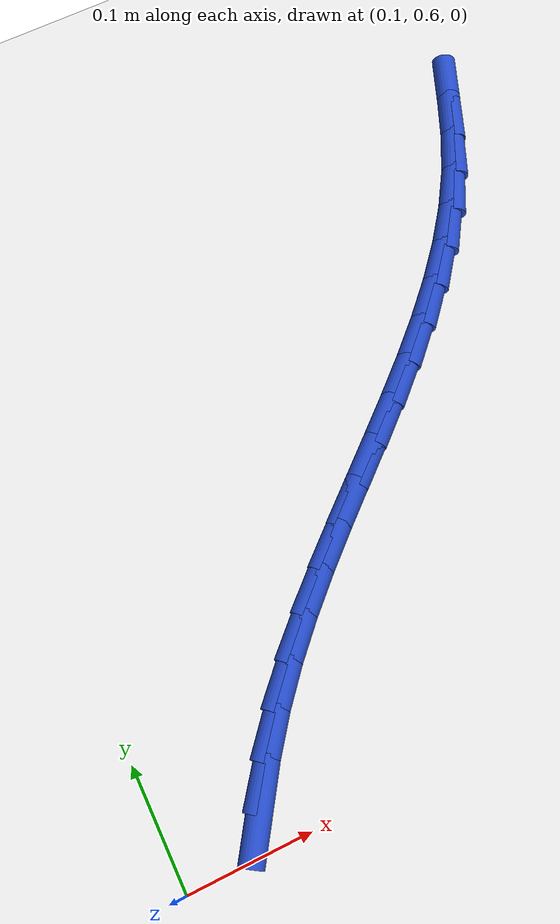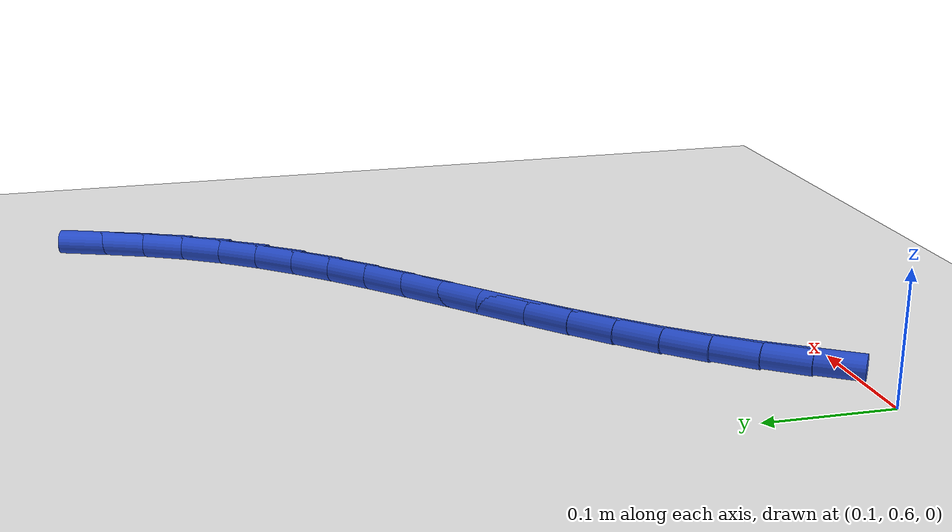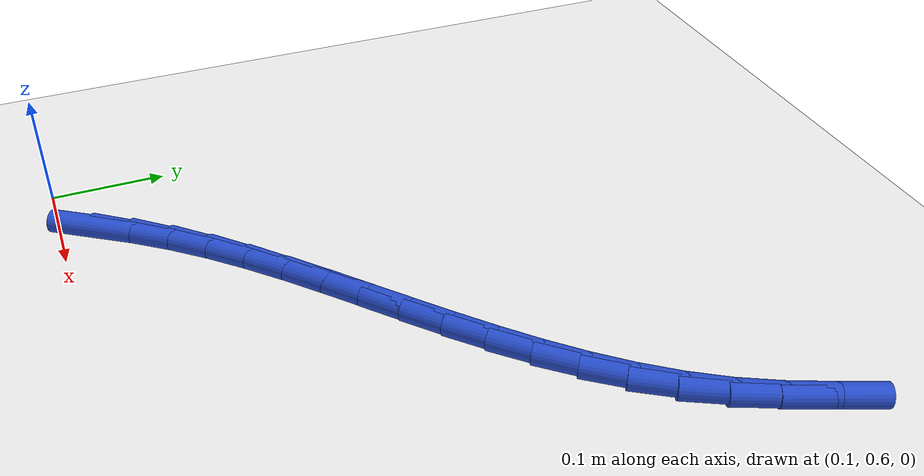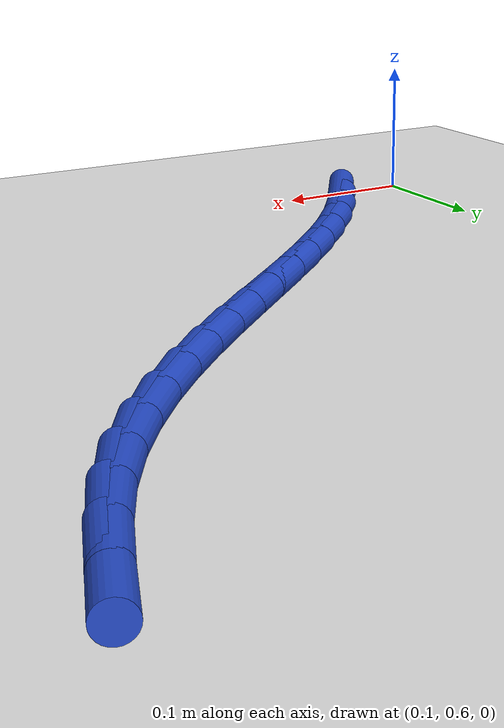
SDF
<sdf version="1.6">
 <world name="default">
  <model name="ground_plane">
   <static>1</static>
   <link name="link">
    <collision name="collision">
     <geometry><plane><normal>0 0 1</normal><size>100 100</size></plane></geometry>
     <surface><friction><ode><mu>100</mu><mu2>50</mu2></ode></friction></surface>
    </collision>
    <visual name="visual">
     <cast_shadows>0</cast_shadows>
     <geometry><plane><normal>0 0 1</normal><size>100 100</size></plane></geometry>
     <material>
      <script><uri>file://media/materials/scripts/gazebo.material</uri><name>Gazebo/WhiteGlow</name></script>
     </material>
    </visual>
   </link>
  </model>
  <model name="line">
   <link name="link_18">
    <pose>0.17172279726252346 0.6295349007970688 0.01 0 1.57 0.9830248916050008</pose>
    <collision name="collision">
     <geometry><cylinder><radius>0.01</radius><length>0.08</length></cylinder></geometry>
    </collision>
    <visual name="visual">
     <material>
      <script><name>Gazebo/Blue</name><uri>file://media/materials/scripts/gazebo.material</uri></script>
     </material>
     <geometry><cylinder><radius>0.01</radius><length>0.08</length></cylinder></geometry>
    </visual>
   </link>
   <link name="link_19">
    <pose>0.1918027371372162 0.6596699018441504 0.01 0 1.57 0.9253168748304635</pose>
    <collision name="collision">
     <geometry><cylinder><radius>0.01</radius><length>0.08</length></cylinder></geometry>
    </collision>
    <visual name="visual">
     <material>
      <script><name>Gazebo/Blue</name><uri>file://media/materials/scripts/gazebo.material</uri></script>
     </material>
     <geometry><cylinder><radius>0.01</radius><length>0.08</length></cylinder></geometry>
    </visual>
   </link>
   <link name="link_20">
    <pose>0.21361486606436075 0.688633189285499 0.01 0 1.57 0.8646955293794278</pose>
    <collision name="collision">
     <geometry><cylinder><radius>0.01</radius><length>0.08</length></cylinder></geometry>
    </collision>
    <visual name="visual">
     <material>
      <script><name>Gazebo/Blue</name><uri>file://media/materials/scripts/gazebo.material</uri></script>
     </material>
     <geometry><cylinder><radius>0.01</radius><length>0.08</length></cylinder></geometry>
    </visual>
   </link>
   <link name="link_21">
    <pose>0.23724048459426914 0.7163377053367608 0.01 0 1.57 0.8111253378330151</pose>
    <collision name="collision">
     <geometry><cylinder><radius>0.01</radius><length>0.08</length></cylinder></geometry>
    </collision>
    <visual name="visual">
     <material>
      <script><name>Gazebo/Blue</name><uri>file://media/materials/scripts/gazebo.material</uri></script>
     </material>
     <geometry><cylinder><radius>0.01</radius><length>0.08</length></cylinder></geometry>
    </visual>
   </link>
   <link name="link_22">
    <pose>0.2624757380812664 0.7429060121801943 0.01 0 1.57 0.7699388440663362</pose>
    <collision name="collision">
     <geometry><cylinder><radius>0.01</radius><length>0.08</length></cylinder></geometry>
    </collision>
    <visual name="visual">
     <material>
      <script><name>Gazebo/Blue</name><uri>file://media/materials/scripts/gazebo.material</uri></script>
     </material>
     <geometry><cylinder><radius>0.01</radius><length>0.08</length></cylinder></geometry>
    </visual>
   </link>
   <link name="link_23">
    <pose>0.28895536361723695 0.7685793245601015 0.01 0 1.57 0.7408283443323731</pose>
    <collision name="collision">
     <geometry><cylinder><radius>0.01</radius><length>0.08</length></cylinder></geometry>
    </collision>
    <visual name="visual">
     <material>
      <script><name>Gazebo/Blue</name><uri>file://media/materials/scripts/gazebo.material</uri></script>
     </material>
     <geometry><cylinder><radius>0.01</radius><length>0.08</length></cylinder></geometry>
    </visual>
   </link>
   <link name="link_24">
    <pose>0.31631226164230225 0.7936002073588365 0.01 0 1.57 0.7234316500924773</pose>
    <collision name="collision">
     <geometry><cylinder><radius>0.01</radius><length>0.08</length></cylinder></geometry>
    </collision>
    <visual name="visual">
     <material>
      <script><name>Gazebo/Blue</name><uri>file://media/materials/scripts/gazebo.material</uri></script>
     </material>
     <geometry><cylinder><radius>0.01</radius><length>0.08</length></cylinder></geometry>
    </visual>
   </link>
   <link name="link_25">
    <pose>0.34417933259658384 0.8182112254587547 0.01 0 1.57 0.7175109697583758</pose>
    <collision name="collision">
     <geometry><cylinder><radius>0.01</radius><length>0.08</length></cylinder></geometry>
    </collision>
    <visual name="visual">
     <material>
      <script><name>Gazebo/Blue</name><uri>file://media/materials/scripts/gazebo.material</uri></script>
     </material>
     <geometry><cylinder><radius>0.01</radius><length>0.08</length></cylinder></geometry>
    </visual>
   </link>
   <link name="link_26">
    <pose>0.37218947692020293 0.8426549437422098 0.01 0 1.57 0.7230161860961923</pose>
    <collision name="collision">
     <geometry><cylinder><radius>0.01</radius><length>0.08</length></cylinder></geometry>
    </collision>
    <visual name="visual">
     <material>
      <script><name>Gazebo/Blue</name><uri>file://media/materials/scripts/gazebo.material</uri></script>
     </material>
     <geometry><cylinder><radius>0.01</radius><length>0.08</length></cylinder></geometry>
    </visual>
   </link>
   <link name="link_27">
    <pose>0.39997559505328134 0.8671739270915578 0.01 0 1.57 0.740107279914569</pose>
    <collision name="collision">
     <geometry><cylinder><radius>0.01</radius><length>0.08</length></cylinder></geometry>
    </collision>
    <visual name="visual">
     <material>
      <script><name>Gazebo/Blue</name><uri>file://media/materials/scripts/gazebo.material</uri></script>
     </material>
     <geometry><cylinder><radius>0.01</radius><length>0.08</length></cylinder></geometry>
    </visual>
   </link>
   <link name="link_28">
    <pose>0.42717058743594016 0.8920107403891522 0.01 0 1.57 0.7691397799463697</pose>
    <collision name="collision">
     <geometry><cylinder><radius>0.01</radius><length>0.08</length></cylinder></geometry>
    </collision>
    <visual name="visual">
     <material>
      <script><name>Gazebo/Blue</name><uri>file://media/materials/scripts/gazebo.material</uri></script>
     </material>
     <geometry><cylinder><radius>0.01</radius><length>0.08</length></cylinder></geometry>
    </visual>
   </link>
   <link name="link_29">
    <pose>0.45340735450830133 0.9174079485173486 0.01 0 1.57 0.8106067733869036</pose>
    <collision name="collision">
     <geometry><cylinder><radius>0.01</radius><length>0.08</length></cylinder></geometry>
    </collision>
    <visual name="visual">
     <material>
      <script><name>Gazebo/Blue</name><uri>file://media/materials/scripts/gazebo.material</uri></script>
     </material>
     <geometry><cylinder><radius>0.01</radius><length>0.08</length></cylinder></geometry>
    </visual>
   </link>
   <link name="link_30">
    <pose>0.4783187967104858 0.9436081163585008 0.01 0 1.57 0.8650213602774097</pose>
    <collision name="collision">
     <geometry><cylinder><radius>0.01</radius><length>0.08</length></cylinder></geometry>
    </collision>
    <visual name="visual">
     <material>
      <script><name>Gazebo/Blue</name><uri>file://media/materials/scripts/gazebo.material</uri></script>
     </material>
     <geometry><cylinder><radius>0.01</radius><length>0.08</length></cylinder></geometry>
    </visual>
   </link>
   <link name="link_31">
    <pose>0.5015378144826155 0.970853808794965 0.01 0 1.57 0.9327191332742362</pose>
    <collision name="collision">
     <geometry><cylinder><radius>0.01</radius><length>0.08</length></cylinder></geometry>
    </collision>
    <visual name="visual">
     <material>
      <script><name>Gazebo/Blue</name><uri>file://media/materials/scripts/gazebo.material</uri></script>
     </material>
     <geometry><cylinder><radius>0.01</radius><length>0.08</length></cylinder></geometry>
    </visual>
   </link>
   <link name="link_32">
    <pose>0.5226973082648116 0.9993875907090944 0.01 0 1.57 1.013571179386667</pose>
    <collision name="collision">
     <geometry><cylinder><radius>0.01</radius><length>0.08</length></cylinder></geometry>
    </collision>
    <visual name="visual">
     <material>
      <script><name>Gazebo/Blue</name><uri>file://media/materials/scripts/gazebo.material</uri></script>
     </material>
     <geometry><cylinder><radius>0.01</radius><length>0.08</length></cylinder></geometry>
    </visual>
   </link>
   <link name="link_33">
    <pose>0.5414301784971958 1.0294520269832448 0.01 0 1.57 1.1042354680259792</pose>
    <collision name="collision">
     <geometry><cylinder><radius>0.01</radius><length>0.08</length></cylinder></geometry>
    </collision>
    <visual name="visual">
     <material>
      <script><name>Gazebo/Blue</name><uri>file://media/materials/scripts/gazebo.material</uri></script>
     </material>
     <geometry><cylinder><radius>0.01</radius><length>0.08</length></cylinder></geometry>
    </visual>
   </link>
   <link name="link_34">
    <pose>0.5574436880247429 1.0612471398191636 0.01 0 1.57 1.1734823656794087</pose>
    <collision name="collision">
     <geometry><cylinder><radius>0.01</radius><length>0.08</length></cylinder></geometry>
    </collision>
    <visual name="visual">
     <material>
      <script><name>Gazebo/Blue</name><uri>file://media/materials/scripts/gazebo.material</uri></script>
     </material>
     <geometry><cylinder><radius>0.01</radius><length>0.08</length></cylinder></geometry>
    </visual>
   </link>
   <link name="link_35">
    <pose>0.5713732499692051 1.0944419572844328 0.01 0 1.57 1.2017743278868716</pose>
    <collision name="collision">
     <geometry><cylinder><radius>0.01</radius><length>0.08</length></cylinder></geometry>
    </collision>
    <visual name="visual">
     <material>
      <script><name>Gazebo/Blue</name><uri>file://media/materials/scripts/gazebo.material</uri></script>
     </material>
     <geometry><cylinder><radius>0.01</radius><length>0.08</length></cylinder></geometry>
    </visual>
   </link>
  </model>
 </world>
</sdf>
